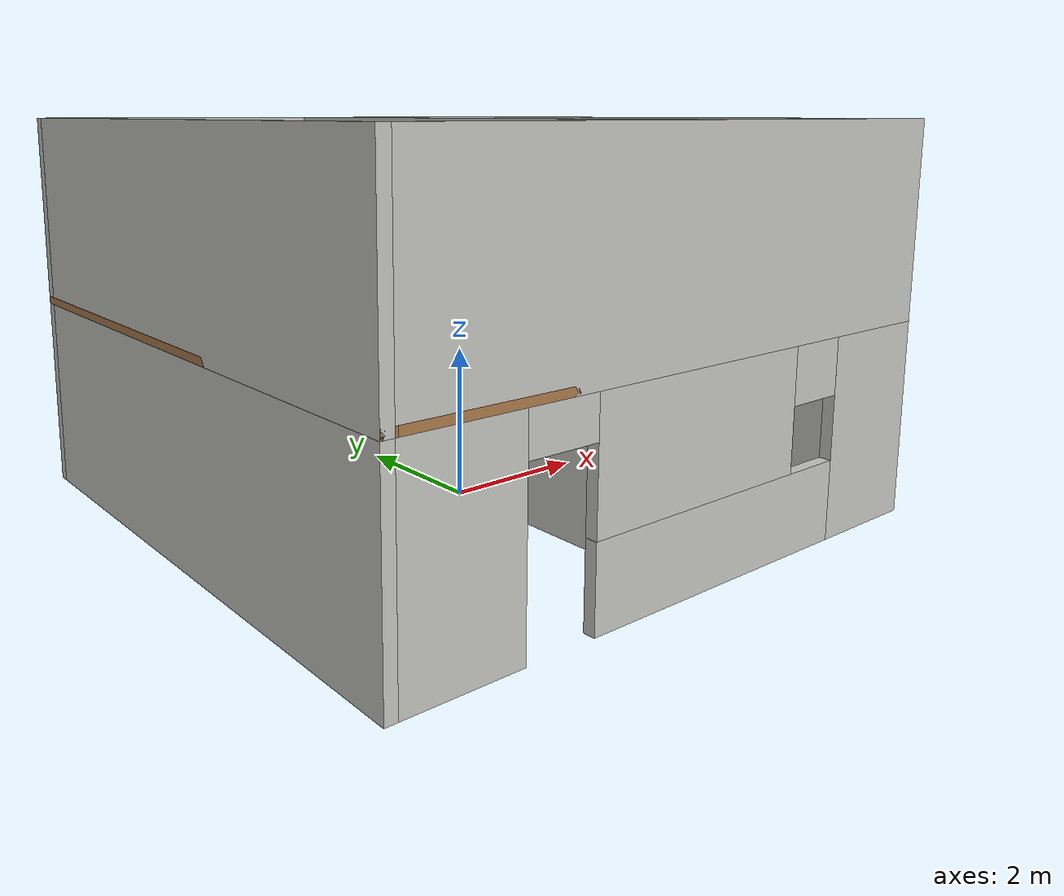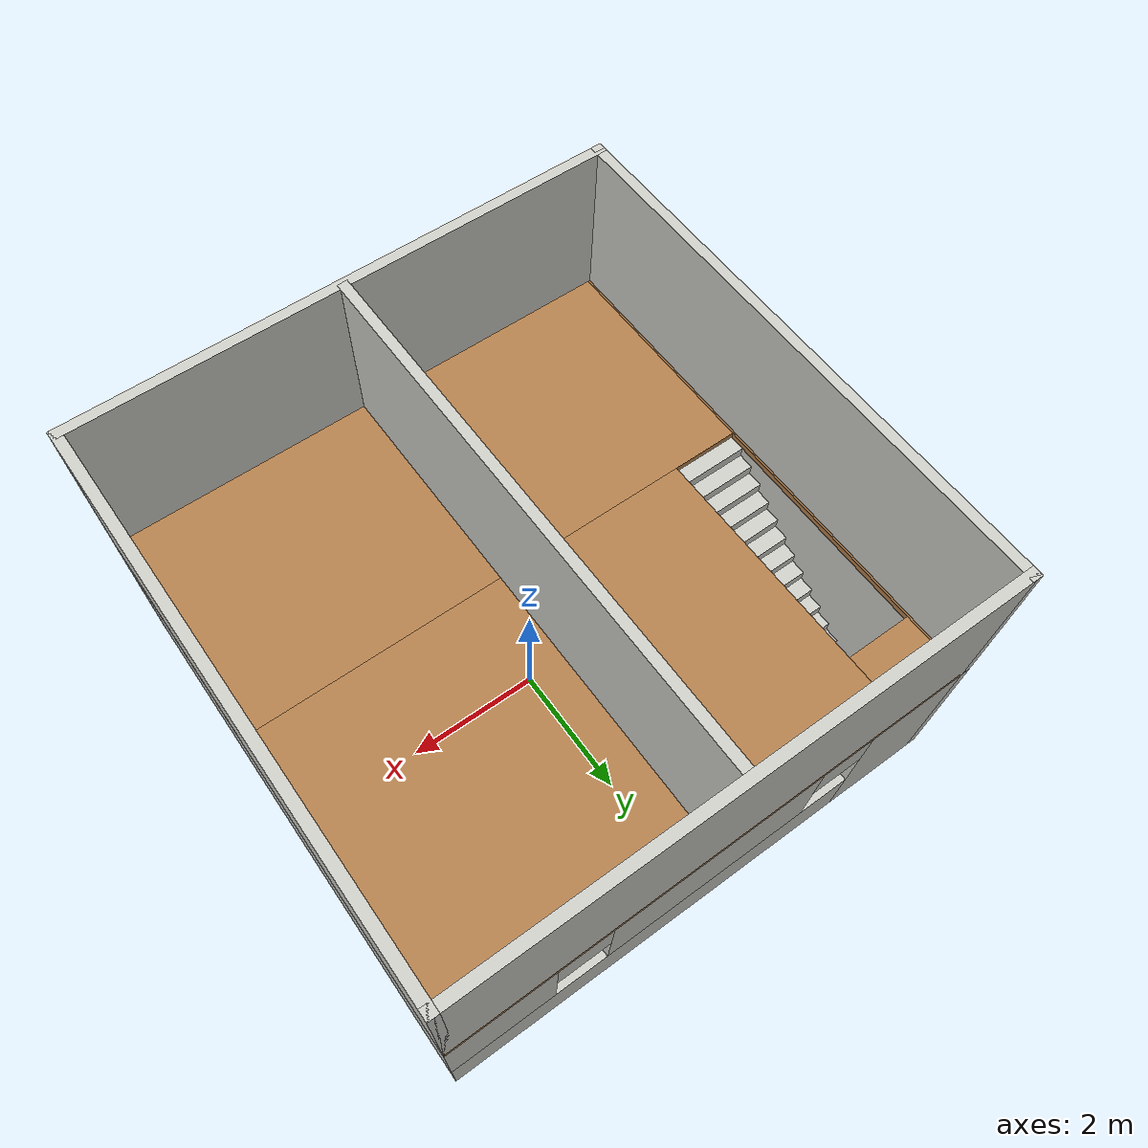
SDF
<?xml version='1.0'?>
<sdf version='1.6'>
  <model name='two_floors_house'>
    <pose frame=''>0 0 0 0 0 0</pose>
    <link name='Floor_1'>
      <pose frame=''>-0 -0 2.5 0 -0 0</pose>
      <visual name='Floor_1_Visual_0'>
        <pose frame=''>-3.91002 0 0.05 0 -0 0</pose>
        <geometry>
          <box>
            <size>0.179966 8 0.1</size>
          </box>
        </geometry>
        <material>
          <script>
            <uri>file://media/materials/scripts/gazebo.material</uri>
            <name>Gazebo/Wood</name>
          </script>
          <ambient>1 1 1 1</ambient>
        </material>
        <meta>
          <layer>1</layer>
        </meta>
      </visual>
      <collision name='Floor_1_Collision_0'>
        <geometry>
          <box>
            <size>0.179966 8 0.1</size>
          </box>
        </geometry>
        <pose frame=''>-3.91002 0 0.05 0 -0 0</pose>
      </collision>
      <visual name='Floor_1_Visual_1'>
        <pose frame=''>0.089983 -2.23999 0.05 0 -0 0</pose>
        <geometry>
          <box>
            <size>7.82003 3.52001 0.1</size>
          </box>
        </geometry>
        <material>
          <script>
            <uri>file://media/materials/scripts/gazebo.material</uri>
            <name>Gazebo/Wood</name>
          </script>
          <ambient>1 1 1 1</ambient>
        </material>
        <meta>
          <layer>1</layer>
        </meta>
      </visual>
      <collision name='Floor_1_Collision_1'>
        <geometry>
          <box>
            <size>7.82003 3.52001 0.1</size>
          </box>
        </geometry>
        <pose frame=''>0.089983 -2.23999 0.05 0 -0 0</pose>
      </collision>
      <visual name='Floor_1_Visual_2'>
        <pose frame=''>0.589983 1.76001 0.05 0 -0 0</pose>
        <geometry>
          <box>
            <size>6.82003 4.47999 0.1</size>
          </box>
        </geometry>
        <material>
          <script>
            <uri>file://media/materials/scripts/gazebo.material</uri>
            <name>Gazebo/Wood</name>
          </script>
          <ambient>1 1 1 1</ambient>
        </material>
        <meta>
          <layer>1</layer>
        </meta>
      </visual>
      <collision name='Floor_1_Collision_2'>
        <geometry>
          <box>
            <size>6.82003 4.47999 0.1</size>
          </box>
        </geometry>
        <pose frame=''>0.589983 1.76001 0.05 0 -0 0</pose>
      </collision>
      <visual name='Floor_1_Visual_3'>
        <pose frame=''>-3.32003 3.51001 0.05 0 -0 0</pose>
        <geometry>
          <box>
            <size>1 0.979989 0.1</size>
          </box>
        </geometry>
        <material>
          <script>
            <uri>file://media/materials/scripts/gazebo.material</uri>
            <name>Gazebo/Wood</name>
          </script>
          <ambient>1 1 1 1</ambient>
        </material>
        <meta>
          <layer>1</layer>
        </meta>
      </visual>
      <collision name='Floor_1_Collision_3'>
        <geometry>
          <box>
            <size>1 0.979989 0.1</size>
          </box>
        </geometry>
        <pose frame=''>-3.32003 3.51001 0.05 0 -0 0</pose>
      </collision>
    </link>
    <link name='Stairs_1'>
      <visual name='Stairs_1_Visual_0'>
        <pose frame=''>-3.32003 2.90334 0.083333 0 -0 0</pose>
        <geometry>
          <box>
            <size>1 0.233333 0.166667</size>
          </box>
        </geometry>
        <material>
          <script>
            <uri>file://media/materials/scripts/gazebo.material</uri>
            <name>Gazebo/CeilingTiled</name>
          </script>
          <ambient>0.921569 0.807843 0.615686 1</ambient>
        </material>
        <meta>
          <layer>0</layer>
        </meta>
      </visual>
      <collision name='Stairs_1_Collision_0'>
        <geometry>
          <box>
            <size>1 0.233333 0.166667</size>
          </box>
        </geometry>
        <pose frame=''>-3.32003 2.90334 0.083333 0 -0 0</pose>
      </collision>
      <visual name='Stairs_1_Visual_1'>
        <pose frame=''>-3.32003 2.67001 0.25 0 -0 0</pose>
        <geometry>
          <box>
            <size>1 0.233333 0.166667</size>
          </box>
        </geometry>
        <material>
          <script>
            <uri>file://media/materials/scripts/gazebo.material</uri>
            <name>Gazebo/CeilingTiled</name>
          </script>
          <ambient>0.921569 0.807843 0.615686 1</ambient>
        </material>
        <meta>
          <layer>0</layer>
        </meta>
      </visual>
      <collision name='Stairs_1_Collision_1'>
        <geometry>
          <box>
            <size>1 0.233333 0.166667</size>
          </box>
        </geometry>
        <pose frame=''>-3.32003 2.67001 0.25 0 -0 0</pose>
      </collision>
      <visual name='Stairs_1_Visual_2'>
        <pose frame=''>-3.32003 2.43668 0.416667 0 -0 0</pose>
        <geometry>
          <box>
            <size>1 0.233333 0.166667</size>
          </box>
        </geometry>
        <material>
          <script>
            <uri>file://media/materials/scripts/gazebo.material</uri>
            <name>Gazebo/CeilingTiled</name>
          </script>
          <ambient>0.921569 0.807843 0.615686 1</ambient>
        </material>
        <meta>
          <layer>0</layer>
        </meta>
      </visual>
      <collision name='Stairs_1_Collision_2'>
        <geometry>
          <box>
            <size>1 0.233333 0.166667</size>
          </box>
        </geometry>
        <pose frame=''>-3.32003 2.43668 0.416667 0 -0 0</pose>
      </collision>
      <visual name='Stairs_1_Visual_3'>
        <pose frame=''>-3.32003 2.20334 0.583333 0 -0 0</pose>
        <geometry>
          <box>
            <size>1 0.233333 0.166667</size>
          </box>
        </geometry>
        <material>
          <script>
            <uri>file://media/materials/scripts/gazebo.material</uri>
            <name>Gazebo/CeilingTiled</name>
          </script>
          <ambient>0.921569 0.807843 0.615686 1</ambient>
        </material>
        <meta>
          <layer>0</layer>
        </meta>
      </visual>
      <collision name='Stairs_1_Collision_3'>
        <geometry>
          <box>
            <size>1 0.233333 0.166667</size>
          </box>
        </geometry>
        <pose frame=''>-3.32003 2.20334 0.583333 0 -0 0</pose>
      </collision>
      <visual name='Stairs_1_Visual_4'>
        <pose frame=''>-3.32003 1.97001 0.75 0 -0 0</pose>
        <geometry>
          <box>
            <size>1 0.233333 0.166667</size>
          </box>
        </geometry>
        <material>
          <script>
            <uri>file://media/materials/scripts/gazebo.material</uri>
            <name>Gazebo/CeilingTiled</name>
          </script>
          <ambient>0.921569 0.807843 0.615686 1</ambient>
        </material>
        <meta>
          <layer>0</layer>
        </meta>
      </visual>
      <collision name='Stairs_1_Collision_4'>
        <geometry>
          <box>
            <size>1 0.233333 0.166667</size>
          </box>
        </geometry>
        <pose frame=''>-3.32003 1.97001 0.75 0 -0 0</pose>
      </collision>
      <visual name='Stairs_1_Visual_5'>
        <pose frame=''>-3.32003 1.73668 0.916667 0 -0 0</pose>
        <geometry>
          <box>
            <size>1 0.233333 0.166667</size>
          </box>
        </geometry>
        <material>
          <script>
            <uri>file://media/materials/scripts/gazebo.material</uri>
            <name>Gazebo/CeilingTiled</name>
          </script>
          <ambient>0.921569 0.807843 0.615686 1</ambient>
        </material>
        <meta>
          <layer>0</layer>
        </meta>
      </visual>
      <collision name='Stairs_1_Collision_5'>
        <geometry>
          <box>
            <size>1 0.233333 0.166667</size>
          </box>
        </geometry>
        <pose frame=''>-3.32003 1.73668 0.916667 0 -0 0</pose>
      </collision>
      <visual name='Stairs_1_Visual_6'>
        <pose frame=''>-3.32003 1.50334 1.08333 0 -0 0</pose>
        <geometry>
          <box>
            <size>1 0.233333 0.166667</size>
          </box>
        </geometry>
        <material>
          <script>
            <uri>file://media/materials/scripts/gazebo.material</uri>
            <name>Gazebo/CeilingTiled</name>
          </script>
          <ambient>0.921569 0.807843 0.615686 1</ambient>
        </material>
        <meta>
          <layer>0</layer>
        </meta>
      </visual>
      <collision name='Stairs_1_Collision_6'>
        <geometry>
          <box>
            <size>1 0.233333 0.166667</size>
          </box>
        </geometry>
        <pose frame=''>-3.32003 1.50334 1.08333 0 -0 0</pose>
      </collision>
      <visual name='Stairs_1_Visual_7'>
        <pose frame=''>-3.32003 1.27001 1.25 0 -0 0</pose>
        <geometry>
          <box>
            <size>1 0.233333 0.166667</size>
          </box>
        </geometry>
        <material>
          <script>
            <uri>file://media/materials/scripts/gazebo.material</uri>
            <name>Gazebo/CeilingTiled</name>
          </script>
          <ambient>0.921569 0.807843 0.615686 1</ambient>
        </material>
        <meta>
          <layer>0</layer>
        </meta>
      </visual>
      <collision name='Stairs_1_Collision_7'>
        <geometry>
          <box>
            <size>1 0.233333 0.166667</size>
          </box>
        </geometry>
        <pose frame=''>-3.32003 1.27001 1.25 0 -0 0</pose>
      </collision>
      <visual name='Stairs_1_Visual_8'>
        <pose frame=''>-3.32003 1.03668 1.41667 0 -0 0</pose>
        <geometry>
          <box>
            <size>1 0.233333 0.166667</size>
          </box>
        </geometry>
        <material>
          <script>
            <uri>file://media/materials/scripts/gazebo.material</uri>
            <name>Gazebo/CeilingTiled</name>
          </script>
          <ambient>0.921569 0.807843 0.615686 1</ambient>
        </material>
        <meta>
          <layer>0</layer>
        </meta>
      </visual>
      <collision name='Stairs_1_Collision_8'>
        <geometry>
          <box>
            <size>1 0.233333 0.166667</size>
          </box>
        </geometry>
        <pose frame=''>-3.32003 1.03668 1.41667 0 -0 0</pose>
      </collision>
      <visual name='Stairs_1_Visual_9'>
        <pose frame=''>-3.32003 0.803344 1.58333 0 -0 0</pose>
        <geometry>
          <box>
            <size>1 0.233333 0.166667</size>
          </box>
        </geometry>
        <material>
          <script>
            <uri>file://media/materials/scripts/gazebo.material</uri>
            <name>Gazebo/CeilingTiled</name>
          </script>
          <ambient>0.921569 0.807843 0.615686 1</ambient>
        </material>
        <meta>
          <layer>0</layer>
        </meta>
      </visual>
      <collision name='Stairs_1_Collision_9'>
        <geometry>
          <box>
            <size>1 0.233333 0.166667</size>
          </box>
        </geometry>
        <pose frame=''>-3.32003 0.803344 1.58333 0 -0 0</pose>
      </collision>
      <visual name='Stairs_1_Visual_10'>
        <pose frame=''>-3.32003 0.570011 1.75 0 -0 0</pose>
        <geometry>
          <box>
            <size>1 0.233333 0.166667</size>
          </box>
        </geometry>
        <material>
          <script>
            <uri>file://media/materials/scripts/gazebo.material</uri>
            <name>Gazebo/CeilingTiled</name>
          </script>
          <ambient>0.921569 0.807843 0.615686 1</ambient>
        </material>
        <meta>
          <layer>0</layer>
        </meta>
      </visual>
      <collision name='Stairs_1_Collision_10'>
        <geometry>
          <box>
            <size>1 0.233333 0.166667</size>
          </box>
        </geometry>
        <pose frame=''>-3.32003 0.570011 1.75 0 -0 0</pose>
      </collision>
      <visual name='Stairs_1_Visual_11'>
        <pose frame=''>-3.32003 0.336677 1.91667 0 -0 0</pose>
        <geometry>
          <box>
            <size>1 0.233333 0.166667</size>
          </box>
        </geometry>
        <material>
          <script>
            <uri>file://media/materials/scripts/gazebo.material</uri>
            <name>Gazebo/CeilingTiled</name>
          </script>
          <ambient>0.921569 0.807843 0.615686 1</ambient>
        </material>
        <meta>
          <layer>0</layer>
        </meta>
      </visual>
      <collision name='Stairs_1_Collision_11'>
        <geometry>
          <box>
            <size>1 0.233333 0.166667</size>
          </box>
        </geometry>
        <pose frame=''>-3.32003 0.336677 1.91667 0 -0 0</pose>
      </collision>
      <visual name='Stairs_1_Visual_12'>
        <pose frame=''>-3.32003 0.103344 2.08333 0 -0 0</pose>
        <geometry>
          <box>
            <size>1 0.233333 0.166667</size>
          </box>
        </geometry>
        <material>
          <script>
            <uri>file://media/materials/scripts/gazebo.material</uri>
            <name>Gazebo/CeilingTiled</name>
          </script>
          <ambient>0.921569 0.807843 0.615686 1</ambient>
        </material>
        <meta>
          <layer>0</layer>
        </meta>
      </visual>
      <collision name='Stairs_1_Collision_12'>
        <geometry>
          <box>
            <size>1 0.233333 0.166667</size>
          </box>
        </geometry>
        <pose frame=''>-3.32003 0.103344 2.08333 0 -0 0</pose>
      </collision>
      <visual name='Stairs_1_Visual_13'>
        <pose frame=''>-3.32003 -0.129989 2.25 0 -0 0</pose>
        <geometry>
          <box>
            <size>1 0.233333 0.166667</size>
          </box>
        </geometry>
        <material>
          <script>
            <uri>file://media/materials/scripts/gazebo.material</uri>
            <name>Gazebo/CeilingTiled</name>
          </script>
          <ambient>0.921569 0.807843 0.615686 1</ambient>
        </material>
        <meta>
          <layer>0</layer>
        </meta>
      </visual>
      <collision name='Stairs_1_Collision_13'>
        <geometry>
          <box>
            <size>1 0.233333 0.166667</size>
          </box>
        </geometry>
        <pose frame=''>-3.32003 -0.129989 2.25 0 -0 0</pose>
      </collision>
      <visual name='Stairs_1_Visual_14'>
        <pose frame=''>-3.32003 -0.363323 2.41667 0 -0 0</pose>
        <geometry>
          <box>
            <size>1 0.233333 0.166667</size>
          </box>
        </geometry>
        <material>
          <script>
            <uri>file://media/materials/scripts/gazebo.material</uri>
            <name>Gazebo/CeilingTiled</name>
          </script>
          <ambient>0.921569 0.807843 0.615686 1</ambient>
        </material>
        <meta>
          <layer>0</layer>
        </meta>
      </visual>
      <collision name='Stairs_1_Collision_14'>
        <geometry>
          <box>
            <size>1 0.233333 0.166667</size>
          </box>
        </geometry>
        <pose frame=''>-3.32003 -0.363323 2.41667 0 -0 0</pose>
      </collision>
    </link>
    <link name='Wall_16'>
      <collision name='Wall_16_Collision'>
        <geometry>
          <box>
            <size>8 0.15 2.5</size>
          </box>
        </geometry>
        <pose frame=''>0 0 1.25 0 -0 0</pose>
      </collision>
      <visual name='Wall_16_Visual'>
        <pose frame=''>0 0 1.25 0 -0 0</pose>
        <geometry>
          <box>
            <size>8 0.15 2.5</size>
          </box>
        </geometry>
        <material>
          <script>
            <uri>file://media/materials/scripts/gazebo.material</uri>
            <name>Gazebo/CeilingTiled</name>
          </script>
          <ambient>0.921569 0.807843 0.615686 1</ambient>
        </material>
        <meta>
          <layer>1</layer>
        </meta>
      </visual>
      <pose frame=''>-3.925 -0 2.5 0 -0 -1.5708</pose>
    </link>
    <link name='Wall_17'>
      <collision name='Wall_17_Collision'>
        <geometry>
          <box>
            <size>8 0.15 2.5</size>
          </box>
        </geometry>
        <pose frame=''>0 0 1.25 0 -0 0</pose>
      </collision>
      <visual name='Wall_17_Visual'>
        <pose frame=''>0 0 1.25 0 -0 0</pose>
        <geometry>
          <box>
            <size>8 0.15 2.5</size>
          </box>
        </geometry>
        <material>
          <script>
            <uri>file://media/materials/scripts/gazebo.material</uri>
            <name>Gazebo/CeilingTiled</name>
          </script>
          <ambient>0.921569 0.807843 0.615686 1</ambient>
        </material>
        <meta>
          <layer>1</layer>
        </meta>
      </visual>
      <pose frame=''>-0 3.925 2.5 0 -0 0</pose>
    </link>
    <link name='Wall_18'>
      <collision name='Wall_18_Collision'>
        <geometry>
          <box>
            <size>8 0.15 2.5</size>
          </box>
        </geometry>
        <pose frame=''>0 0 1.25 0 -0 0</pose>
      </collision>
      <visual name='Wall_18_Visual'>
        <pose frame=''>0 0 1.25 0 -0 0</pose>
        <geometry>
          <box>
            <size>8 0.15 2.5</size>
          </box>
        </geometry>
        <material>
          <script>
            <uri>file://media/materials/scripts/gazebo.material</uri>
            <name>Gazebo/CeilingTiled</name>
          </script>
          <ambient>0.921569 0.807843 0.615686 1</ambient>
        </material>
        <meta>
          <layer>1</layer>
        </meta>
      </visual>
      <pose frame=''>3.925 -0 2.5 0 -0 -1.5708</pose>
    </link>
    <link name='Wall_19'>
      <collision name='Wall_19_Collision'>
        <geometry>
          <box>
            <size>8 0.15 2.5</size>
          </box>
        </geometry>
        <pose frame=''>0 0 1.25 0 -0 0</pose>
      </collision>
      <visual name='Wall_19_Visual'>
        <pose frame=''>0 0 1.25 0 -0 0</pose>
        <geometry>
          <box>
            <size>8 0.15 2.5</size>
          </box>
        </geometry>
        <material>
          <script>
            <uri>file://media/materials/scripts/gazebo.material</uri>
            <name>Gazebo/CeilingTiled</name>
          </script>
          <ambient>0.921569 0.807843 0.615686 1</ambient>
        </material>
        <meta>
          <layer>1</layer>
        </meta>
      </visual>
      <pose frame=''>-0 -3.925 2.5 0 -0 3.14159</pose>
    </link>
    <link name='Wall_20'>
      <collision name='Wall_20_Collision'>
        <geometry>
          <box>
            <size>7.824 0.15 2.5</size>
          </box>
        </geometry>
        <pose frame=''>0 0 1.25 0 -0 0</pose>
      </collision>
      <visual name='Wall_20_Visual'>
        <pose frame=''>0 0 1.25 0 -0 0</pose>
        <geometry>
          <box>
            <size>7.824 0.15 2.5</size>
          </box>
        </geometry>
        <material>
          <script>
            <uri>file://media/materials/scripts/gazebo.material</uri>
            <name>Gazebo/CeilingTiled</name>
          </script>
          <ambient>0.921569 0.807843 0.615686 1</ambient>
        </material>
        <meta>
          <layer>1</layer>
        </meta>
      </visual>
      <pose frame=''>0.045 -0.025 2.5 0 -0 -1.5708</pose>
    </link>
    <link name='Wall_3'>
      <collision name='Wall_3_Collision'>
        <geometry>
          <box>
            <size>8 0.15 2.5</size>
          </box>
        </geometry>
        <pose frame=''>0 0 1.25 0 -0 0</pose>
      </collision>
      <visual name='Wall_3_Visual'>
        <pose frame=''>0 0 1.25 0 -0 0</pose>
        <geometry>
          <box>
            <size>8 0.15 2.5</size>
          </box>
        </geometry>
        <material>
          <script>
            <uri>file://media/materials/scripts/gazebo.material</uri>
            <name>Gazebo/CeilingTiled</name>
          </script>
          <ambient>1 0.764706 0.305882 1</ambient>
        </material>
        <meta>
          <layer>0</layer>
        </meta>
      </visual>
      <pose frame=''>-3.925 -0 0 0 -0 -1.5708</pose>
    </link>
    <link name='Wall_5'>
      <pose frame=''>-0 3.925 0 0 -0 0</pose>
      <visual name='Wall_5_Visual_0'>
        <pose frame=''>-3.17834 0 1.25 0 -0 0</pose>
        <geometry>
          <box>
            <size>1.64333 0.15 2.5</size>
          </box>
        </geometry>
        <material>
          <script>
            <uri>file://media/materials/scripts/gazebo.material</uri>
            <name>Gazebo/CeilingTiled</name>
          </script>
          <ambient>0.921569 0.807843 0.615686 1</ambient>
        </material>
        <meta>
          <layer>0</layer>
        </meta>
      </visual>
      <collision name='Wall_5_Collision_0'>
        <geometry>
          <box>
            <size>1.64333 0.15 2.5</size>
          </box>
        </geometry>
        <pose frame=''>-3.17834 0 1.25 0 -0 0</pose>
      </collision>
      <visual name='Wall_5_Visual_1'>
        <pose frame=''>0.821663 0 0.5 0 -0 0</pose>
        <geometry>
          <box>
            <size>6.35667 0.15 1</size>
          </box>
        </geometry>
        <material>
          <script>
            <uri>file://media/materials/scripts/gazebo.material</uri>
            <name>Gazebo/CeilingTiled</name>
          </script>
          <ambient>0.921569 0.807843 0.615686 1</ambient>
        </material>
        <meta>
          <layer>0</layer>
        </meta>
      </visual>
      <collision name='Wall_5_Collision_1'>
        <geometry>
          <box>
            <size>6.35667 0.15 1</size>
          </box>
        </geometry>
        <pose frame=''>0.821663 0 0.5 0 -0 0</pose>
      </collision>
      <visual name='Wall_5_Visual_2'>
        <pose frame=''>0.044163 0 1.75 0 -0 0</pose>
        <geometry>
          <box>
            <size>3.20167 0.15 1.5</size>
          </box>
        </geometry>
        <material>
          <script>
            <uri>file://media/materials/scripts/gazebo.material</uri>
            <name>Gazebo/CeilingTiled</name>
          </script>
          <ambient>0.921569 0.807843 0.615686 1</ambient>
        </material>
        <meta>
          <layer>0</layer>
        </meta>
      </visual>
      <collision name='Wall_5_Collision_2'>
        <geometry>
          <box>
            <size>3.20167 0.15 1.5</size>
          </box>
        </geometry>
        <pose frame=''>0.044163 0 1.75 0 -0 0</pose>
      </collision>
      <visual name='Wall_5_Visual_3'>
        <pose frame=''>3.2225 0 1.75 0 -0 0</pose>
        <geometry>
          <box>
            <size>1.555 0.15 1.5</size>
          </box>
        </geometry>
        <material>
          <script>
            <uri>file://media/materials/scripts/gazebo.material</uri>
            <name>Gazebo/CeilingTiled</name>
          </script>
          <ambient>0.921569 0.807843 0.615686 1</ambient>
        </material>
        <meta>
          <layer>0</layer>
        </meta>
      </visual>
      <collision name='Wall_5_Collision_3'>
        <geometry>
          <box>
            <size>1.555 0.15 1.5</size>
          </box>
        </geometry>
        <pose frame=''>3.2225 0 1.75 0 -0 0</pose>
      </collision>
      <visual name='Wall_5_Visual_4'>
        <pose frame=''>-1.95667 0 2.15 0 -0 0</pose>
        <geometry>
          <box>
            <size>0.8 0.15 0.7</size>
          </box>
        </geometry>
        <material>
          <script>
            <uri>file://media/materials/scripts/gazebo.material</uri>
            <name>Gazebo/CeilingTiled</name>
          </script>
          <ambient>0.921569 0.807843 0.615686 1</ambient>
        </material>
        <meta>
          <layer>0</layer>
        </meta>
      </visual>
      <collision name='Wall_5_Collision_4'>
        <geometry>
          <box>
            <size>0.8 0.15 0.7</size>
          </box>
        </geometry>
        <pose frame=''>-1.95667 0 2.15 0 -0 0</pose>
      </collision>
      <visual name='Wall_5_Visual_5'>
        <pose frame=''>2.045 0 2.15 0 -0 0</pose>
        <geometry>
          <box>
            <size>0.8 0.15 0.7</size>
          </box>
        </geometry>
        <material>
          <script>
            <uri>file://media/materials/scripts/gazebo.material</uri>
            <name>Gazebo/CeilingTiled</name>
          </script>
          <ambient>0.921569 0.807843 0.615686 1</ambient>
        </material>
        <meta>
          <layer>0</layer>
        </meta>
      </visual>
      <collision name='Wall_5_Collision_5'>
        <geometry>
          <box>
            <size>0.8 0.15 0.7</size>
          </box>
        </geometry>
        <pose frame=''>2.045 0 2.15 0 -0 0</pose>
      </collision>
    </link>
    <link name='Wall_6'>
      <collision name='Wall_6_Collision'>
        <geometry>
          <box>
            <size>8 0.15 2.5</size>
          </box>
        </geometry>
        <pose frame=''>0 0 1.25 0 -0 0</pose>
      </collision>
      <visual name='Wall_6_Visual'>
        <pose frame=''>0 0 1.25 0 -0 0</pose>
        <geometry>
          <box>
            <size>8 0.15 2.5</size>
          </box>
        </geometry>
        <material>
          <script>
            <uri>file://media/materials/scripts/gazebo.material</uri>
            <name>Gazebo/CeilingTiled</name>
          </script>
          <ambient>0.921569 0.807843 0.615686 1</ambient>
        </material>
        <meta>
          <layer>0</layer>
        </meta>
      </visual>
      <pose frame=''>3.925 -0 0 0 -0 -1.5708</pose>
    </link>
    <link name='Wall_7'>
      <pose frame=''>-0 -3.925 0 0 -0 3.14159</pose>
      <visual name='Wall_7_Visual_0'>
        <pose frame=''>-3.2225 0 1.25 0 -0 0</pose>
        <geometry>
          <box>
            <size>1.555 0.15 2.5</size>
          </box>
        </geometry>
        <material>
          <script>
            <uri>file://media/materials/scripts/gazebo.material</uri>
            <name>Gazebo/CeilingTiled</name>
          </script>
          <ambient>0.921569 0.807843 0.615686 1</ambient>
        </material>
        <meta>
          <layer>0</layer>
        </meta>
      </visual>
      <collision name='Wall_7_Collision_0'>
        <geometry>
          <box>
            <size>1.555 0.15 2.5</size>
          </box>
        </geometry>
        <pose frame=''>-3.2225 0 1.25 0 -0 0</pose>
      </collision>
      <visual name='Wall_7_Visual_1'>
        <pose frame=''>3.2025 0 1.25 0 -0 0</pose>
        <geometry>
          <box>
            <size>1.595 0.15 2.5</size>
          </box>
        </geometry>
        <material>
          <script>
            <uri>file://media/materials/scripts/gazebo.material</uri>
            <name>Gazebo/CeilingTiled</name>
          </script>
          <ambient>0.921569 0.807843 0.615686 1</ambient>
        </material>
        <meta>
          <layer>0</layer>
        </meta>
      </visual>
      <collision name='Wall_7_Collision_1'>
        <geometry>
          <box>
            <size>1.595 0.15 2.5</size>
          </box>
        </geometry>
        <pose frame=''>3.2025 0 1.25 0 -0 0</pose>
      </collision>
      <visual name='Wall_7_Visual_2'>
        <pose frame=''>-0.47 0 0.5 0 -0 0</pose>
        <geometry>
          <box>
            <size>3.95 0.15 1</size>
          </box>
        </geometry>
        <material>
          <script>
            <uri>file://media/materials/scripts/gazebo.material</uri>
            <name>Gazebo/CeilingTiled</name>
          </script>
          <ambient>0.921569 0.807843 0.615686 1</ambient>
        </material>
        <meta>
          <layer>0</layer>
        </meta>
      </visual>
      <collision name='Wall_7_Collision_2'>
        <geometry>
          <box>
            <size>3.95 0.15 1</size>
          </box>
        </geometry>
        <pose frame=''>-0.47 0 0.5 0 -0 0</pose>
      </collision>
      <visual name='Wall_7_Visual_3'>
        <pose frame=''>-0.07 0 1.75 0 -0 0</pose>
        <geometry>
          <box>
            <size>3.15 0.15 1.5</size>
          </box>
        </geometry>
        <material>
          <script>
            <uri>file://media/materials/scripts/gazebo.material</uri>
            <name>Gazebo/CeilingTiled</name>
          </script>
          <ambient>0.921569 0.807843 0.615686 1</ambient>
        </material>
        <meta>
          <layer>0</layer>
        </meta>
      </visual>
      <collision name='Wall_7_Collision_3'>
        <geometry>
          <box>
            <size>3.15 0.15 1.5</size>
          </box>
        </geometry>
        <pose frame=''>-0.07 0 1.75 0 -0 0</pose>
      </collision>
      <visual name='Wall_7_Visual_4'>
        <pose frame=''>-2.045 0 2.15 0 -0 0</pose>
        <geometry>
          <box>
            <size>0.8 0.15 0.7</size>
          </box>
        </geometry>
        <material>
          <script>
            <uri>file://media/materials/scripts/gazebo.material</uri>
            <name>Gazebo/CeilingTiled</name>
          </script>
          <ambient>0.921569 0.807843 0.615686 1</ambient>
        </material>
        <meta>
          <layer>0</layer>
        </meta>
      </visual>
      <collision name='Wall_7_Collision_4'>
        <geometry>
          <box>
            <size>0.8 0.15 0.7</size>
          </box>
        </geometry>
        <pose frame=''>-2.045 0 2.15 0 -0 0</pose>
      </collision>
      <visual name='Wall_7_Visual_5'>
        <pose frame=''>1.955 0 2.25 0 -0 0</pose>
        <geometry>
          <box>
            <size>0.9 0.15 0.5</size>
          </box>
        </geometry>
        <material>
          <script>
            <uri>file://media/materials/scripts/gazebo.material</uri>
            <name>Gazebo/CeilingTiled</name>
          </script>
          <ambient>0.921569 0.807843 0.615686 1</ambient>
        </material>
        <meta>
          <layer>0</layer>
        </meta>
      </visual>
      <collision name='Wall_7_Collision_5'>
        <geometry>
          <box>
            <size>0.9 0.15 0.5</size>
          </box>
        </geometry>
        <pose frame=''>1.955 0 2.25 0 -0 0</pose>
      </collision>
    </link>
    <link name='Wall_9'>
      <pose frame=''>0.045 -0.025 0 0 -0 -1.5708</pose>
      <visual name='Wall_9_Visual_0'>
        <pose frame=''>-2.18651 0 1.25 0 -0 0</pose>
        <geometry>
          <box>
            <size>3.45097 0.15 2.5</size>
          </box>
        </geometry>
        <material>
          <script>
            <uri>file://media/materials/scripts/gazebo.material</uri>
            <name>Gazebo/CeilingTiled</name>
          </script>
          <ambient>0.921569 0.807843 0.615686 1</ambient>
        </material>
        <meta>
          <layer>0</layer>
        </meta>
      </visual>
      <collision name='Wall_9_Collision_0'>
        <geometry>
          <box>
            <size>3.45097 0.15 2.5</size>
          </box>
        </geometry>
        <pose frame=''>-2.18651 0 1.25 0 -0 0</pose>
      </collision>
      <visual name='Wall_9_Visual_1'>
        <pose frame=''>2.17549 0 1.25 0 -0 0</pose>
        <geometry>
          <box>
            <size>3.47303 0.15 2.5</size>
          </box>
        </geometry>
        <material>
          <script>
            <uri>file://media/materials/scripts/gazebo.material</uri>
            <name>Gazebo/CeilingTiled</name>
          </script>
          <ambient>0.921569 0.807843 0.615686 1</ambient>
        </material>
        <meta>
          <layer>0</layer>
        </meta>
      </visual>
      <collision name='Wall_9_Collision_1'>
        <geometry>
          <box>
            <size>3.47303 0.15 2.5</size>
          </box>
        </geometry>
        <pose frame=''>2.17549 0 1.25 0 -0 0</pose>
      </collision>
      <visual name='Wall_9_Visual_2'>
        <pose frame=''>-0.011029 0 2.25 0 -0 0</pose>
        <geometry>
          <box>
            <size>0.9 0.15 0.5</size>
          </box>
        </geometry>
        <material>
          <script>
            <uri>file://media/materials/scripts/gazebo.material</uri>
            <name>Gazebo/CeilingTiled</name>
          </script>
          <ambient>0.921569 0.807843 0.615686 1</ambient>
        </material>
        <meta>
          <layer>0</layer>
        </meta>
      </visual>
      <collision name='Wall_9_Collision_2'>
        <geometry>
          <box>
            <size>0.9 0.15 0.5</size>
          </box>
        </geometry>
        <pose frame=''>-0.011029 0 2.25 0 -0 0</pose>
      </collision>
    </link>
    <static>1</static>
  </model>
</sdf>
